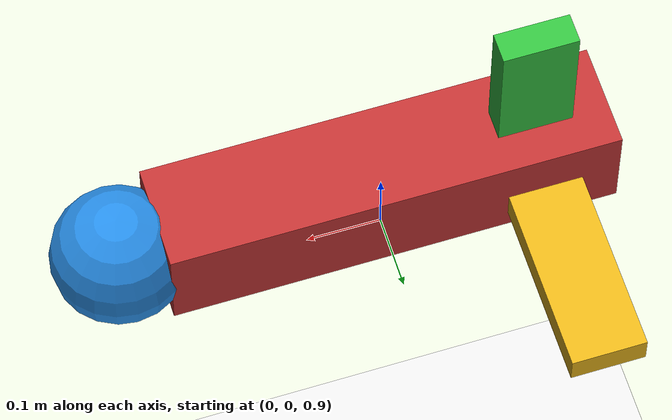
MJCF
<?xml version="1.0"?>
<mujoco model="asymmetric_body">
  <compiler angle="radian"/>
  <option gravity="0 0 0" timestep="0.005"/>

  <visual>
    <headlight diffuse="0.6 0.6 0.6" ambient="0.4 0.4 0.4"/>
    <global offwidth="1280" offheight="960"/>
  </visual>

  <asset>
    <texture type="skybox" builtin="gradient" rgb1="0.95 0.95 0.98" rgb2="0.6 0.6 0.7" width="256" height="256"/>
    <texture name="grid" type="2d" builtin="checker" rgb1="0.85 0.85 0.85" rgb2="0.95 0.95 0.95" width="300" height="300"/>
    <material name="grid_mat" texture="grid" texrepeat="6 6" reflectance="0.0"/>
  </asset>

  <worldbody>
    <light pos="0 0 3" dir="0 0 -1" diffuse="0.8 0.8 0.8"/>
    <geom name="floor" type="plane" size="2 2 0.1" material="grid_mat"/>

    <body name="asym_body" pos="0 0 1">
      <freejoint name="root"/>
      <geom name="fuselage" type="box" size="0.3 0.07 0.07" rgba="0.75 0.2 0.2 1" mass="1.0"/>
      <geom name="nose" type="sphere" size="0.09" pos="0.35 0 0" rgba="0.15 0.55 0.9 1" mass="0.2"/>
      <geom name="fin_top" type="box" size="0.05 0.02 0.14" pos="-0.2 0 0.12" rgba="0.2 0.75 0.25 1" mass="0.1"/>
      <geom name="fin_side" type="box" size="0.05 0.18 0.02" pos="-0.2 0.14 -0.02" rgba="0.9 0.7 0.1 1" mass="0.1"/>
    </body>
  </worldbody>
</mujoco>
